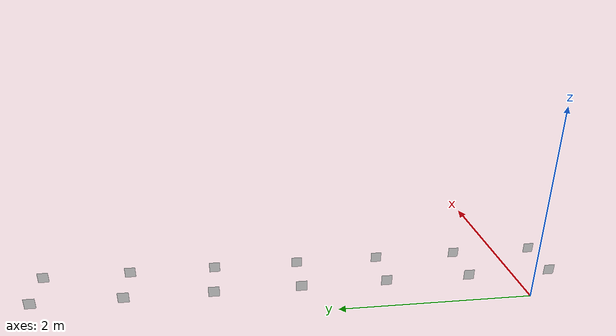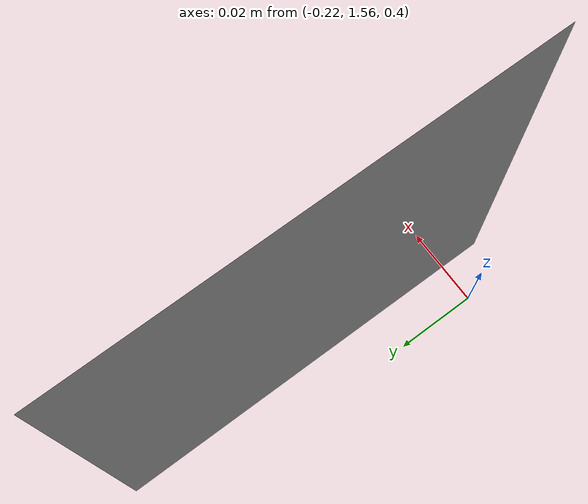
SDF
<sdf version="1.6">
 <world name="default">
  <include><uri>model://Aruco_00</uri><name>Aruco_l00</name><pose>-0.21 0 0.45 0 0 1.57</pose></include>
  <include><uri>model://Aruco_01</uri><name>Aruco_l01</name><pose>-0.21 0.8 0.45 0 0 1.57</pose></include>
  <include><uri>model://Aruco_02</uri><name>Aruco_l02</name><pose>-0.21 1.6 0.45 0 0 1.57</pose></include>
  <include>
   <uri>model://Aruco_03</uri>
   <name>Aruco_l03</name>
   <pose>-0.21 2.4000000000000004 0.45 0 0 1.57</pose>
  </include>
  <include><uri>model://Aruco_04</uri><name>Aruco_l04</name><pose>-0.21 3.2 0.45 0 0 1.57</pose></include>
  <include><uri>model://Aruco_05</uri><name>Aruco_l05</name><pose>-0.21 4.0 0.45 0 0 1.57</pose></include>
  <include><uri>model://Aruco_06</uri><name>Aruco_l06</name><pose>-0.21 4.8 0.45 0 0 1.57</pose></include>
  <include><uri>model://Aruco_00</uri><name>Aruco_r00</name><pose>0.21 0 0.45 0 0 -1.57</pose></include>
  <include><uri>model://Aruco_01</uri><name>Aruco_r01</name><pose>0.21 0.8 0.45 0 0 -1.57</pose></include>
  <include><uri>model://Aruco_02</uri><name>Aruco_r02</name><pose>0.21 1.6 0.45 0 0 -1.57</pose></include>
  <include>
   <uri>model://Aruco_03</uri>
   <name>Aruco_r03</name>
   <pose>0.21 2.4000000000000004 0.45 0 0 -1.57</pose>
  </include>
  <include><uri>model://Aruco_04</uri><name>Aruco_r04</name><pose>0.21 3.2 0.45 0 0 -1.57</pose></include>
  <include><uri>model://Aruco_05</uri><name>Aruco_r05</name><pose>0.21 4.0 0.45 0 0 -1.57</pose></include>
  <include><uri>model://Aruco_06</uri><name>Aruco_r06</name><pose>0.21 4.8 0.45 0 0 -1.57</pose></include>
 </world>
</sdf>

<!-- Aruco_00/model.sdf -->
<sdf version="1.6">
  <model name="aruco">
    <static>true</static>
    <link name="link">

      <visual name="visual1">
        <cast_shadows>false</cast_shadows>
	      <pose> 0 0 0 0 0 0</pose>
        <geometry>
          <mesh>
            <uri>model://Aruco_00/meshes/aruco0.obj</uri>
	               <scale>0.05 0.05 0.05</scale>
          </mesh>
        </geometry>
      </visual>

    </link>
  </model>
</sdf>

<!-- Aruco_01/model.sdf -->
<sdf version="1.6">
  <model name="Aruco_01">
    <static>true</static>
    <link name="link">

      <visual name="visual1">
        <cast_shadows>false</cast_shadows>
	      <pose> 0 0 0 0 0 0</pose>
        <geometry>
          <mesh>
            <uri>model://Aruco_01/meshes/aruco0.obj</uri>
	               <scale>0.05 0.05 0.05</scale>
          </mesh>
        </geometry>
      </visual>

    </link>
  </model>
</sdf>

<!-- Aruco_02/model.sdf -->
<sdf version="1.6">
  <model name="aruco">
    <static>true</static>
    <link name="link">

      <visual name="visual1">
        <cast_shadows>false</cast_shadows>
	      <pose> 0 0 0 0 0 0</pose>
        <geometry>
          <mesh>
            <uri>model://Aruco_02/meshes/aruco0.obj</uri>
	               <scale>0.05 0.05 0.05</scale>
          </mesh>
        </geometry>
      </visual>

    </link>
  </model>
</sdf>

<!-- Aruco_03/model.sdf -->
<sdf version="1.6">
  <model name="aruco">
    <static>true</static>
    <link name="link">

      <visual name="visual1">
        <cast_shadows>false</cast_shadows>
	      <pose> 0 0 0 0 0 0</pose>
        <geometry>
          <mesh>
            <uri>model://Aruco_03/meshes/aruco0.obj</uri>
	               <scale>0.05 0.05 0.05</scale>
          </mesh>
        </geometry>
      </visual>

    </link>
  </model>
</sdf>

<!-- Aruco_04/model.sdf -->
<sdf version="1.6">
  <model name="aruco">
    <static>true</static>
    <link name="link">

      <visual name="visual1">
        <cast_shadows>false</cast_shadows>
	      <pose> 0 0 0 0 0 0</pose>
        <geometry>
          <mesh>
            <uri>model://Aruco_04/meshes/aruco0.obj</uri>
	               <scale>0.05 0.05 0.05</scale>
          </mesh>
        </geometry>
      </visual>

    </link>
  </model>
</sdf>

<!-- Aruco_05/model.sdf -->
<sdf version="1.6">
  <model name="aruco">
    <static>true</static>
    <link name="link">

      <visual name="visual1">
        <cast_shadows>false</cast_shadows>
	      <pose> 0 0 0 0 0 0</pose>
        <geometry>
          <mesh>
            <uri>model://Aruco_05/meshes/aruco0.obj</uri>
	               <scale>0.05 0.05 0.05</scale>
          </mesh>
        </geometry>
      </visual>

    </link>
  </model>
</sdf>

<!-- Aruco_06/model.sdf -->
<sdf version="1.6">
  <model name="aruco">
    <static>true</static>
    <link name="link">

      <visual name="visual1">
        <cast_shadows>false</cast_shadows>
	      <pose> 0 0 0 0 0 0</pose>
        <geometry>
          <mesh>
            <uri>model://Aruco_06/meshes/aruco0.obj</uri>
	               <scale>0.05 0.05 0.05</scale>
          </mesh>
        </geometry>
      </visual>

    </link>
  </model>
</sdf>
